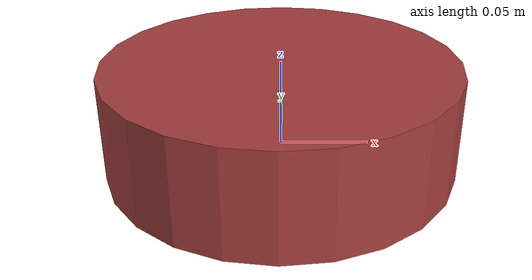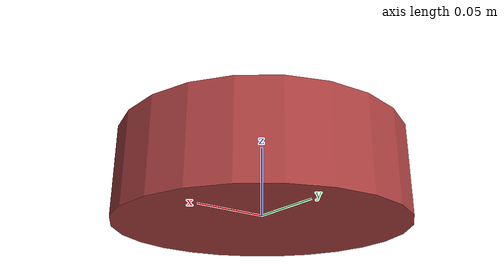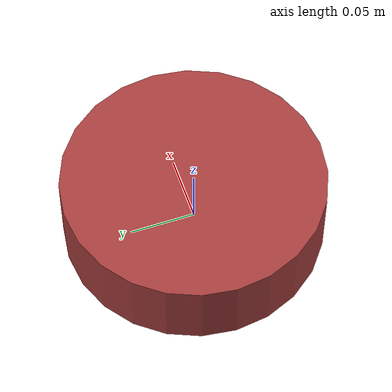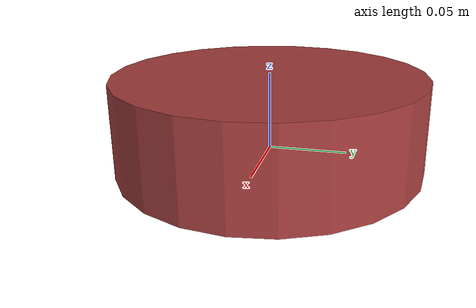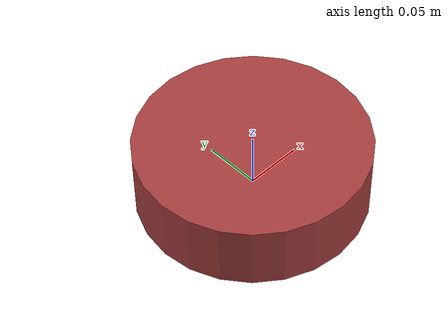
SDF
<?xml version="1.0" ?>
<sdf version="1.7">
  <model name="swarm_robot_description">
    <link name="base_link">
      <pose>0 0 0 0 0 0</pose>
      <inertial>
        <pose>0 0 0.06 0 0 0</pose>
        <mass>1.66</mass>
        <inertia>
          <ixx>0.009</ixx>
          <ixy>0</ixy>
          <ixz>0</ixz>
          <iyy>0.009</iyy>
          <iyz>0</iyz>
          <izz>0.015</izz>
        </inertia>
      </inertial>
      <visual name="base_visual">
        <pose>0 0 0.02 0 0 0</pose>
        <geometry>
          <cylinder>
            <radius>0.10</radius>
            <length>0.06</length>
          </cylinder>
        </geometry>
        <material>
          <ambient>0.65 0.24 0.24 1</ambient>
          <diffuse>0.65 0.24 0.24 1</diffuse>
        </material>
      </visual>
      <collision name="base_collision">
        <pose>0 0 0.02 0 0 0</pose>
        <geometry>
          <cylinder>
            <radius>0.10</radius>
            <length>0.06</length>
          </cylinder>
        </geometry>
      </collision>
    </link>
  </model>
</sdf>
